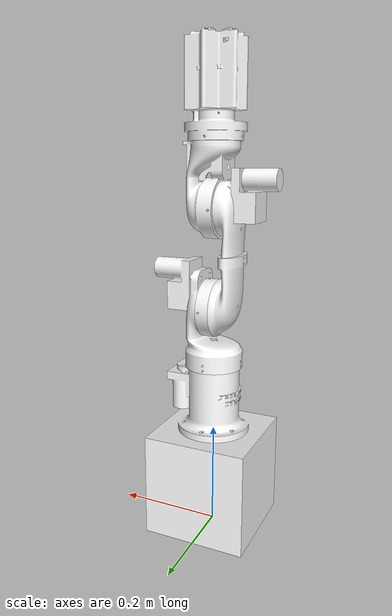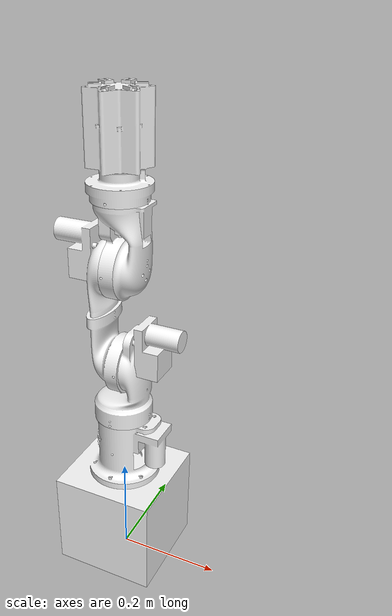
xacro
<?xml version="1.0" ?>
<robot name="robot" xmlns:xacro="http://www.ros.org/wiki/xacro">

<xacro:include filename="$(find robot_description)/urdf/materials.xacro" />
<xacro:include filename="$(find robot_description)/urdf/robot.ros2control.xml" />
<xacro:include filename="$(find robot_description)/urdf/robot.gazebo" />

<link name="world"/>
  <joint name="world_joint" type="fixed">
    <parent link="world"/>
    <child link="base_link"/>
    <origin xyz="0 0 0" rpy="0 0 0"/>
  </joint>

<link name="base_link">
  <inertial>
    <origin xyz="0.0027874319748177083 -6.6482327611205835e-06 0.1693760086095525" rpy="0 0 0"/>
    <mass value="2.986783245883562"/>
    <inertia ixx="0.03718" iyy="0.037718" izz="0.023436" ixy="2e-06" iyz="3e-06" ixz="-0.001019"/>
  </inertial>
  <visual>
    <origin xyz="0 0 0" rpy="0 0 0"/>
    <geometry>
      <mesh filename="file://$(find robot_description)/meshes/base_link.stl" scale="0.001 0.001 0.001"/>
    </geometry>
    <material name="silver"/>
  </visual>
  <collision>
    <origin xyz="0 0 0" rpy="0 0 0"/>
    <geometry>
      <mesh filename="file://$(find robot_description)/meshes/base_link.stl" scale="0.001 0.001 0.001"/>
    </geometry>
  </collision>
</link>

<link name="link_1_1">
  <inertial>
    <origin xyz="0.03203545707133116 6.56538982319565e-08 0.08077936335497066" rpy="0 0 0"/>
    <mass value="0.8428301280523249"/>
    <inertia ixx="0.003458" iyy="0.00399" izz="0.001466" ixy="0.0" iyz="0.0" ixz="-0.0012"/>
  </inertial>
  <visual>
    <origin xyz="-0.0 -0.0 -0.3498" rpy="0 0 0"/>
    <geometry>
      <mesh filename="file://$(find robot_description)/meshes/link_1_1.stl" scale="0.001 0.001 0.001"/>
    </geometry>
    <material name="silver"/>
  </visual>
  <collision>
    <origin xyz="-0.0 -0.0 -0.3498" rpy="0 0 0"/>
    <geometry>
      <mesh filename="file://$(find robot_description)/meshes/link_1_1.stl" scale="0.001 0.001 0.001"/>
    </geometry>
  </collision>
</link>

<link name="link_2_1">
  <inertial>
    <origin xyz="-0.04281904062820563 -1.0964962187231438e-06 0.11585244003658518" rpy="0 0 0"/>
    <mass value="1.1195065908716404"/>
    <inertia ixx="0.009844" iyy="0.009957" izz="0.001343" ixy="0.0" iyz="-0.0" ixz="0.00161"/>
  </inertial>
  <visual>
    <origin xyz="-0.0065 -0.0 -0.446" rpy="0 0 0"/>
    <geometry>
      <mesh filename="file://$(find robot_description)/meshes/link_2_1.stl" scale="0.001 0.001 0.001"/>
    </geometry>
    <material name="silver"/>
  </visual>
  <collision>
    <origin xyz="-0.0065 -0.0 -0.446" rpy="0 0 0"/>
    <geometry>
      <mesh filename="file://$(find robot_description)/meshes/link_2_1.stl" scale="0.001 0.001 0.001"/>
    </geometry>
  </collision>
</link>

<link name="link_3_1">
  <inertial>
    <origin xyz="0.017597104112327712 6.355208032475261e-07 0.04666326128874709" rpy="0 0 0"/>
    <mass value="0.7200165192778331"/>
    <inertia ixx="0.002324" iyy="0.00221" izz="0.000713" ixy="0.0" iyz="-0.0" ixz="0.000199"/>
  </inertial>
  <visual>
    <origin xyz="0.0058 -0.0 -0.633" rpy="0 0 0"/>
    <geometry>
      <mesh filename="file://$(find robot_description)/meshes/link_3_1.stl" scale="0.001 0.001 0.001"/>
    </geometry>
    <material name="silver"/>
  </visual>
  <collision>
    <origin xyz="0.0058 -0.0 -0.633" rpy="0 0 0"/>
    <geometry>
      <mesh filename="file://$(find robot_description)/meshes/link_3_1.stl" scale="0.001 0.001 0.001"/>
    </geometry>
  </collision>
</link>

<link name="gripper_1">
  <inertial>
    <origin xyz="6.152017482170002e-05 0.0008155438037858232 0.08968942355527643" rpy="0 0 0"/>
    <mass value="0.7956624906794072"/>
    <inertia ixx="0.002947" iyy="0.00294" izz="0.001036" ixy="-8e-06" iyz="-6e-06" ixz="2e-06"/>
  </inertial>
  <visual>
    <origin xyz="-0.0002 -0.0 -0.7535" rpy="0 0 0"/>
    <geometry>
      <mesh filename="file://$(find robot_description)/meshes/gripper_1.stl" scale="0.001 0.001 0.001"/>
    </geometry>
    <material name="silver"/>
  </visual>
  <collision>
    <origin xyz="-0.0002 -0.0 -0.7535" rpy="0 0 0"/>
    <geometry>
      <mesh filename="file://$(find robot_description)/meshes/gripper_1.stl" scale="0.001 0.001 0.001"/>
    </geometry>
  </collision>
</link>

<link name="ee_link"/>
  <joint name="ee_fixed_joint" type="fixed">
    <parent link="gripper_1"/>
    <child link="ee_link"/>
    <origin xyz="0 0 0.225" rpy="0 0 0"/>
  </joint>

<joint name="joint_1" type="revolute">
  <origin xyz="0.0 0.0 0.3498" rpy="0 0 0"/>
  <parent link="base_link"/>
  <child link="link_1_1"/>
  <axis xyz="0.0 0.0 1.0"/>
  <limit upper="1.745329" lower="-1.745329" effort="100" velocity="100"/>
</joint>

<joint name="joint_2" type="revolute">
  <origin xyz="0.0065 0.0 0.0962" rpy="0 0 0"/>
  <parent link="link_1_1"/>
  <child link="link_2_1"/>
  <axis xyz="-1.0 0.0 0.0"/>
  <limit upper="1.745329" lower="-0.872665" effort="100" velocity="100"/>
</joint>

<joint name="joint_3" type="revolute">
  <origin xyz="-0.0123 0.0 0.187" rpy="0 0 0"/>
  <parent link="link_2_1"/>
  <child link="link_3_1"/>
  <axis xyz="-1.0 0.0 0.0"/>
  <limit upper="1.745329" lower="-0.872665" effort="100" velocity="100"/>
</joint>

<joint name="joint_4" type="revolute">
  <origin xyz="0.006 0.0 0.1205" rpy="0 0 0"/>
  <parent link="link_3_1"/>
  <child link="gripper_1"/>
  <axis xyz="0.0 0.0 1.0"/>
  <limit upper="1.570796" lower="-1.570796" effort="100" velocity="100"/>
</joint>

</robot>

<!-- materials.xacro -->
<robot name="robot" xmlns:xacro="http://www.ros.org/wiki/xacro" >

<material name="silver">
  <color rgba="0.960 0.960 0.960 1.000"/>
</material>

</robot>

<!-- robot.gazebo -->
<robot name="robot" xmlns:xacro="http://www.ros.org/wiki/xacro" >

<xacro:property name="body_color" value="Gazebo/White" />

<gazebo reference="base_link">
  <material>${body_color}</material>
  <mu1>0.2</mu1>
  <mu2>0.2</mu2>
  <self_collide>true</self_collide>
  <gravity>true</gravity>
</gazebo>

<gazebo reference="link_1_1">
  <material>${body_color}</material>
  <mu1>0.2</mu1>
  <mu2>0.2</mu2>
  <self_collide>true</self_collide>
</gazebo>

<gazebo reference="link_2_1">
  <material>${body_color}</material>
  <mu1>0.2</mu1>
  <mu2>0.2</mu2>
  <self_collide>true</self_collide>
</gazebo>

<gazebo reference="link_3_1">
  <material>${body_color}</material>
  <mu1>0.2</mu1>
  <mu2>0.2</mu2>
  <self_collide>true</self_collide>
</gazebo>

<gazebo reference="gripper_1">
  <material>${body_color}</material>
  <mu1>0.2</mu1>
  <mu2>0.2</mu2>
  <self_collide>true</self_collide>
</gazebo>

<gazebo>
  <plugin name="gazebo_ros2_control" filename="libgazebo_ros2_control.so"/>
</gazebo>

</robot>
